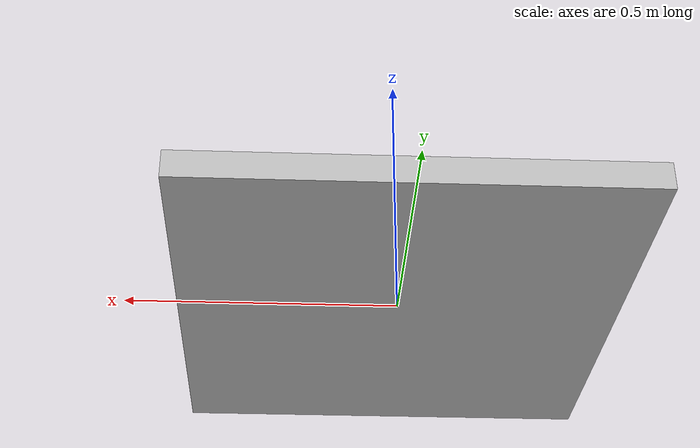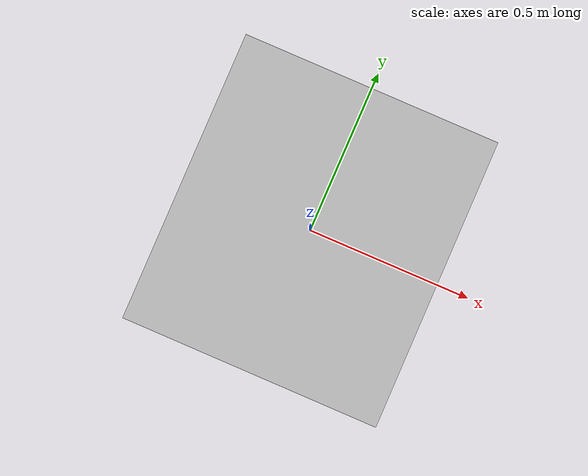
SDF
<?xml version="1.0"?>
<sdf version="1.9">
  <model name="workspace_table">
    <static>true</static>
    <link name="table_link">
      <pose>0 0 0 0 0 0</pose>

      <collision name="collision">
        <geometry>
          <box>
            <size>0.8 0.9 0.05</size>
          </box>
        </geometry>
      </collision>

      <visual name="visual">
        <geometry>
          <box>
            <size>0.8 0.9 0.05</size>
          </box>
        </geometry>
        <material>
          <ambient>0.7 0.7 0.7 1</ambient>
          <diffuse>0.7 0.7 0.7 1</diffuse>
          <specular>0.2 0.2 0.2 1</specular>
        </material>
      </visual>
    </link>
  </model>
</sdf>
